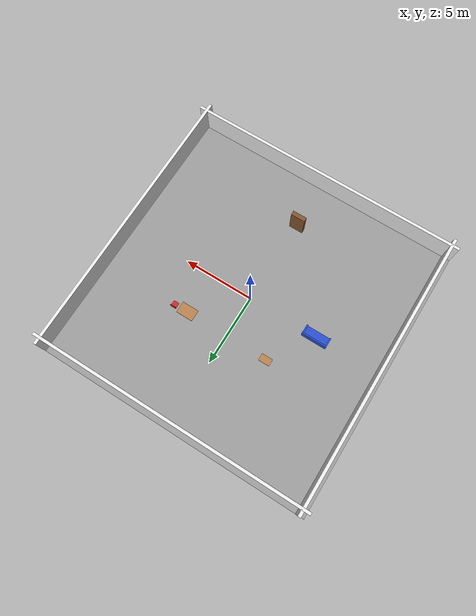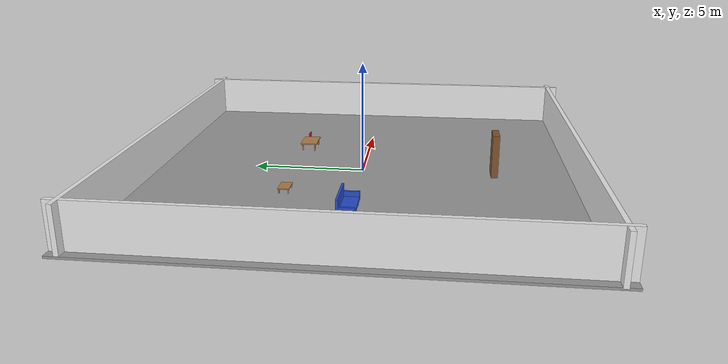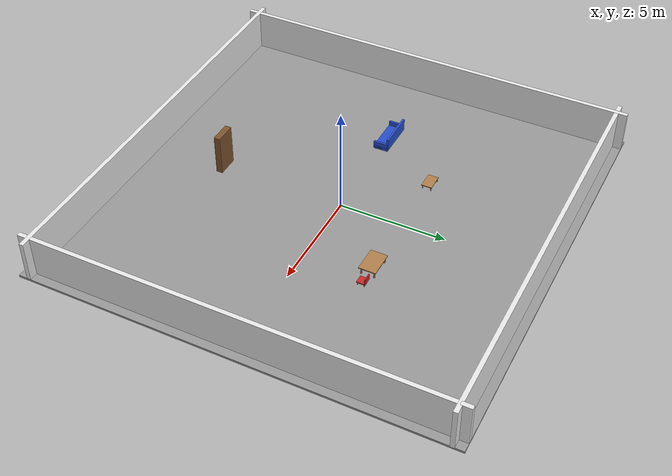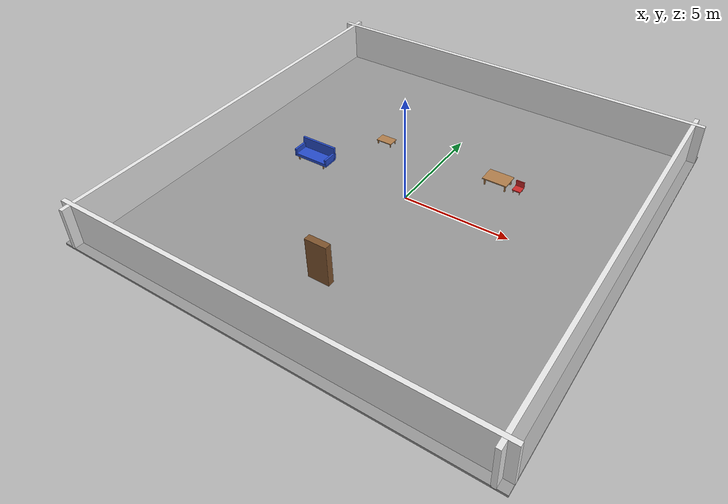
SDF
<?xml version="1.0" ?>
<sdf version="1.6">
  <world name="large_apartment">

    <!-- 环境光照 -->
    <light type="directional" name="sun">
      <cast_shadows>true</cast_shadows>
      <pose>0 0 10 0 0 0</pose>
      <diffuse>0.8 0.8 0.8 1</diffuse>
      <specular>0.2 0.2 0.2 1</specular>
      <attenuation>
        <range>1000</range>
        <constant>0.9</constant>
        <linear>0.01</linear>
        <quadratic>0.001</quadratic>
      </attenuation>
      <direction>-0.5 0.5 -1</direction>
    </light>

    <!-- 全局光照设置 -->
    <scene>
      <ambient>0.4 0.4 0.4 1</ambient>
      <background>0.7 0.7 0.7 1</background>
      <shadows>true</shadows>
    </scene>

    <!-- 物理引擎 -->
    <physics type="ode">
      <max_step_size>0.001</max_step_size>
      <real_time_factor>1</real_time_factor>
      <real_time_update_rate>1000</real_time_update_rate>
      <gravity>0 0 -9.8</gravity>
    </physics>

    <!-- ========== 自定义模型 ========== -->

    <!-- 地面 -->
    <model name="floor">
      <static>true</static>
      <link name="floor_link">
        <collision name="floor_collision">
          <geometry>
            <box>
              <size>20 20 0.1</size>
            </box>
          </geometry>
          <surface>
            <friction>
              <ode>
                <mu>1</mu>
                <mu2>0.8</mu2>
                <slip1>0.01</slip1>
                <slip2>0.01</slip2>
              </ode>
            </friction>
          </surface>
        </collision>
        <visual name="floor_visual">
          <geometry>
            <box>
              <size>20 20 0.1</size>
            </box>
          </geometry>
          <material>
            <script>
              <uri>file://media/materials/scripts/gazebo.material</uri>
              <name>Gazebo/Grey</name>
            </script>
          </material>
        </visual>
      </link>
    </model>

    <!-- 墙壁 -->
    <model name="wall_north">
      <static>true</static>
      <pose>0 9.5 1 0 0 0</pose>
      <link name="wall_link">
        <collision name="wall_collision">
          <geometry>
            <box>
              <size>20 0.2 2</size>
            </box>
          </geometry>
        </collision>
        <visual name="wall_visual">
          <geometry>
            <box>
              <size>20 0.2 2</size>
            </box>
          </geometry>
          <material>
            <script>
              <uri>file://media/materials/scripts/gazebo.material</uri>
              <name>Gazebo/White</name>
            </script>
          </material>
        </visual>
      </link>
    </model>

    <model name="wall_south">
      <static>true</static>
      <pose>0 -9.5 1 0 0 0</pose>
      <link name="wall_link">
        <collision name="wall_collision">
          <geometry>
            <box>
              <size>20 0.2 2</size>
            </box>
          </geometry>
        </collision>
        <visual name="wall_visual">
          <geometry>
            <box>
              <size>20 0.2 2</size>
            </box>
          </geometry>
          <material>
            <script>
              <uri>file://media/materials/scripts/gazebo.material</uri>
              <name>Gazebo/White</name>
            </script>
          </material>
        </visual>
      </link>
    </model>

    <model name="wall_east">
      <static>true</static>
      <pose>9.5 0 1 0 0 0</pose>
      <link name="wall_link">
        <collision name="wall_collision">
          <geometry>
            <box>
              <size>0.2 20 2</size>
            </box>
          </geometry>
        </collision>
        <visual name="wall_visual">
          <geometry>
            <box>
              <size>0.2 20 2</size>
            </box>
          </geometry>
          <material>
            <script>
              <uri>file://media/materials/scripts/gazebo.material</uri>
              <name>Gazebo/White</name>
            </script>
          </material>
        </visual>
      </link>
    </model>

    <model name="wall_west">
      <static>true</static>
      <pose>-9.5 0 1 0 0 0</pose>
      <link name="wall_link">
        <collision name="wall_collision">
          <geometry>
            <box>
              <size>0.2 20 2</size>
            </box>
          </geometry>
        </collision>
        <visual name="wall_visual">
          <geometry>
            <box>
              <size>0.2 20 2</size>
            </box>
          </geometry>
          <material>
            <script>
              <uri>file://media/materials/scripts/gazebo.material</uri>
              <name>Gazebo/White</name>
            </script>
          </material>
        </visual>
      </link>
    </model>

    <!-- 精致餐桌 -->
    <model name="dining_table">
      <static>true</static>
      <pose>3 3 0 0 0 0</pose>
      <link name="table_link">
        <!-- 桌面 -->
        <collision name="tabletop_collision">
          <pose>0 0 0.4 0 0 0</pose>
          <geometry>
            <box>
              <size>1.2 0.8 0.05</size>
            </box>
          </geometry>
        </collision>
        <visual name="tabletop_visual">
          <pose>0 0 0.4 0 0 0</pose>
          <geometry>
            <box>
              <size>1.2 0.8 0.05</size>
            </box>
          </geometry>
          <material>
            <script>
              <uri>file://media/materials/scripts/gazebo.material</uri>
              <name>Gazebo/Wood</name>
            </script>
          </material>
        </visual>
        <!-- 桌腿 -->
        <collision name="leg1_collision">
          <pose>0.5 0.3 0.15 0 0 0</pose>
          <geometry>
            <box>
              <size>0.06 0.06 0.3</size>
            </box>
          </geometry>
        </collision>
        <visual name="leg1_visual">
          <pose>0.5 0.3 0.15 0 0 0</pose>
          <geometry>
            <box>
              <size>0.06 0.06 0.3</size>
            </box>
          </geometry>
          <material>
            <script>
              <uri>file://media/materials/scripts/gazebo.material</uri>
              <name>Gazebo/DarkWood</name>
            </script>
          </material>
        </visual>
        <collision name="leg2_collision">
          <pose>-0.5 0.3 0.15 0 0 0</pose>
          <geometry>
            <box>
              <size>0.06 0.06 0.3</size>
            </box>
          </geometry>
        </collision>
        <visual name="leg2_visual">
          <pose>-0.5 0.3 0.15 0 0 0</pose>
          <geometry>
            <box>
              <size>0.06 0.06 0.3</size>
            </box>
          </geometry>
          <material>
            <script>
              <uri>file://media/materials/scripts/gazebo.material</uri>
              <name>Gazebo/DarkWood</name>
            </script>
          </material>
        </visual>
        <collision name="leg3_collision">
          <pose>0.5 -0.3 0.15 0 0 0</pose>
          <geometry>
            <box>
              <size>0.06 0.06 0.3</size>
            </box>
          </geometry>
        </collision>
        <visual name="leg3_visual">
          <pose>0.5 -0.3 0.15 0 0 0</pose>
          <geometry>
            <box>
              <size>0.06 0.06 0.3</size>
            </box>
          </geometry>
          <material>
            <script>
              <uri>file://media/materials/scripts/gazebo.material</uri>
              <name>Gazebo/DarkWood</name>
            </script>
          </material>
        </visual>
        <collision name="leg4_collision">
          <pose>-0.5 -0.3 0.15 0 0 0</pose>
          <geometry>
            <box>
              <size>0.06 0.06 0.3</size>
            </box>
          </geometry>
        </collision>
        <visual name="leg4_visual">
          <pose>-0.5 -0.3 0.15 0 0 0</pose>
          <geometry>
            <box>
              <size>0.06 0.06 0.3</size>
            </box>
          </geometry>
          <material>
            <script>
              <uri>file://media/materials/scripts/gazebo.material</uri>
              <name>Gazebo/DarkWood</name>
            </script>
          </material>
        </visual>
      </link>
    </model>

    <!-- 精致餐椅 -->
    <model name="dining_chair">
      <static>true</static>
      <pose>4 3 0 0 0 0</pose>
      <link name="chair_link">
        <!-- 座位 -->
        <collision name="seat_collision">
          <pose>0 0 0.2 0 0 0</pose>
          <geometry>
            <box>
              <size>0.4 0.4 0.05</size>
            </box>
          </geometry>
        </collision>
        <visual name="seat_visual">
          <pose>0 0 0.2 0 0 0</pose>
          <geometry>
            <box>
              <size>0.4 0.4 0.05</size>
            </box>
          </geometry>
          <material>
            <script>
              <uri>file://media/materials/scripts/gazebo.material</uri>
              <name>Gazebo/Red</name>
            </script>
          </material>
        </visual>
        <!-- 椅背 -->
        <collision name="back_collision">
          <pose>0 0.2 0.35 0 0 0</pose>
          <geometry>
            <box>
              <size>0.4 0.05 0.3</size>
            </box>
          </geometry>
        </collision>
        <visual name="back_visual">
          <pose>0 0.2 0.35 0 0 0</pose>
          <geometry>
            <box>
              <size>0.4 0.05 0.3</size>
            </box>
          </geometry>
          <material>
            <script>
              <uri>file://media/materials/scripts/gazebo.material</uri>
              <name>Gazebo/Red</name>
            </script>
          </material>
        </visual>
        <!-- 椅腿 -->
        <collision name="leg1_collision">
          <pose>0.15 0.15 0 0 0 0</pose>
          <geometry>
            <box>
              <size>0.03 0.03 0.4</size>
            </box>
          </geometry>
        </collision>
        <visual name="leg1_visual">
          <pose>0.15 0.15 0 0 0 0</pose>
          <geometry>
            <box>
              <size>0.03 0.03 0.4</size>
            </box>
          </geometry>
          <material>
            <script>
              <uri>file://media/materials/scripts/gazebo.material</uri>
              <name>Gazebo/DarkWood</name>
            </script>
          </material>
        </visual>
        <collision name="leg2_collision">
          <pose>-0.15 0.15 0 0 0 0</pose>
          <geometry>
            <box>
              <size>0.03 0.03 0.4</size>
            </box>
          </geometry>
        </collision>
        <visual name="leg2_visual">
          <pose>-0.15 0.15 0 0 0 0</pose>
          <geometry>
            <box>
              <size>0.03 0.03 0.4</size>
            </box>
          </geometry>
          <material>
            <script>
              <uri>file://media/materials/scripts/gazebo.material</uri>
              <name>Gazebo/DarkWood</name>
            </script>
          </material>
        </visual>
        <collision name="leg3_collision">
          <pose>0.15 -0.15 0 0 0 0</pose>
          <geometry>
            <box>
              <size>0.03 0.03 0.4</size>
            </box>
          </geometry>
        </collision>
        <visual name="leg3_visual">
          <pose>0.15 -0.15 0 0 0 0</pose>
          <geometry>
            <box>
              <size>0.03 0.03 0.4</size>
            </box>
          </geometry>
          <material>
            <script>
              <uri>file://media/materials/scripts/gazebo.material</uri>
              <name>Gazebo/DarkWood</name>
            </script>
          </material>
        </visual>
        <collision name="leg4_collision">
          <pose>-0.15 -0.15 0 0 0 0</pose>
          <geometry>
            <box>
              <size>0.03 0.03 0.4</size>
            </box>
          </geometry>
        </collision>
        <visual name="leg4_visual">
          <pose>-0.15 -0.15 0 0 0 0</pose>
          <geometry>
            <box>
              <size>0.03 0.03 0.4</size>
            </box>
          </geometry>
          <material>
            <script>
              <uri>file://media/materials/scripts/gazebo.material</uri>
              <name>Gazebo/DarkWood</name>
            </script>
          </material>
        </visual>
      </link>
    </model>

    <!-- 精致沙发 -->
    <model name="sofa">
      <static>true</static>
      <pose>-5 0 0 0 0 0</pose>
      <link name="sofa_link">
        <!-- 座位 -->
        <collision name="seat_collision">
          <pose>0 0 0.3 0 0 0</pose>
          <geometry>
            <box>
              <size>1.8 0.7 0.15</size>
            </box>
          </geometry>
        </collision>
        <visual name="seat_visual">
          <pose>0 0 0.3 0 0 0</pose>
          <geometry>
            <box>
              <size>1.8 0.7 0.15</size>
            </box>
          </geometry>
          <material>
            <script>
              <uri>file://media/materials/scripts/gazebo.material</uri>
              <name>Gazebo/Blue</name>
            </script>
          </material>
        </visual>
        <!-- 靠背 -->
        <collision name="back_collision">
          <pose>0 0.35 0.6 0 0 0</pose>
          <geometry>
            <box>
              <size>1.8 0.1 0.6</size>
            </box>
          </geometry>
        </collision>
        <visual name="back_visual">
          <pose>0 0.35 0.6 0 0 0</pose>
          <geometry>
            <box>
              <size>1.8 0.1 0.6</size>
            </box>
          </geometry>
          <material>
            <script>
              <uri>file://media/materials/scripts/gazebo.material</uri>
              <name>Gazebo/DarkBlue</name>
            </script>
          </material>
        </visual>
        <!-- 扶手 -->
        <collision name="arm1_collision">
          <pose>-0.85 0 0.45 0 0 0</pose>
          <geometry>
            <box>
              <size>0.1 0.7 0.3</size>
            </box>
          </geometry>
        </collision>
        <visual name="arm1_visual">
          <pose>-0.85 0 0.45 0 0 0</pose>
          <geometry>
            <box>
              <size>0.1 0.7 0.3</size>
            </box>
          </geometry>
          <material>
            <script>
              <uri>file://media/materials/scripts/gazebo.material</uri>
              <name>Gazebo/DarkBlue</name>
            </script>
          </material>
        </visual>
        <collision name="arm2_collision">
          <pose>0.85 0 0.45 0 0 0</pose>
          <geometry>
            <box>
              <size>0.1 0.7 0.3</size>
            </box>
          </geometry>
        </collision>
        <visual name="arm2_visual">
          <pose>0.85 0 0.45 0 0 0</pose>
          <geometry>
            <box>
              <size>0.1 0.7 0.3</size>
            </box>
          </geometry>
          <material>
            <script>
              <uri>file://media/materials/scripts/gazebo.material</uri>
              <name>Gazebo/DarkBlue</name>
            </script>
          </material>
        </visual>
        <!-- 沙发腿 -->
        <collision name="leg1_collision">
          <pose>-0.7 -0.3 0.1 0 0 0</pose>
          <geometry>
            <box>
              <size>0.05 0.05 0.2</size>
            </box>
          </geometry>
        </collision>
        <visual name="leg1_visual">
          <pose>-0.7 -0.3 0.1 0 0 0</pose>
          <geometry>
            <box>
              <size>0.05 0.05 0.2</size>
            </box>
          </geometry>
          <material>
            <script>
              <uri>file://media/materials/scripts/gazebo.material</uri>
              <name>Gazebo/DarkWood</name>
            </script>
          </material>
        </visual>
        <collision name="leg2_collision">
          <pose>0.7 -0.3 0.1 0 0 0</pose>
          <geometry>
            <box>
              <size>0.05 0.05 0.2</size>
            </box>
          </geometry>
        </collision>
        <visual name="leg2_visual">
          <pose>0.7 -0.3 0.1 0 0 0</pose>
          <geometry>
            <box>
              <size>0.05 0.05 0.2</size>
            </box>
          </geometry>
          <material>
            <script>
              <uri>file://media/materials/scripts/gazebo.material</uri>
              <name>Gazebo/DarkWood</name>
            </script>
          </material>
        </visual>
      </link>
    </model>

    <!-- 精致书柜 -->
    <model name="bookshelf">
      <static>true</static>
      <pose>0 -6 0 0 0 0</pose>
      <link name="bookshelf_link">
        <!-- 主体 -->
        <collision name="main_collision">
          <pose>0 0 1 0 0 0</pose>
          <geometry>
            <box>
              <size>1.0 0.3 2</size>
            </box>
          </geometry>
        </collision>
        <visual name="main_visual">
          <pose>0 0 1 0 0 0</pose>
          <geometry>
            <box>
              <size>1.0 0.3 2</size>
            </box>
          </geometry>
          <material>
            <script>
              <uri>file://media/materials/scripts/gazebo.material</uri>
              <name>Gazebo/Brown</name>
            </script>
          </material>
        </visual>
        <!-- 隔板 -->
        <collision name="shelf1_collision">
          <pose>0 0 0.5 0 0 0</pose>
          <geometry>
            <box>
              <size>0.9 0.25 0.02</size>
            </box>
          </geometry>
        </collision>
        <visual name="shelf1_visual">
          <pose>0 0 0.5 0 0 0</pose>
          <geometry>
            <box>
              <size>0.9 0.25 0.02</size>
            </box>
          </geometry>
          <material>
            <script>
              <uri>file://media/materials/scripts/gazebo.material</uri>
              <name>Gazebo/DarkWood</name>
            </script>
          </material>
        </visual>
        <collision name="shelf2_collision">
          <pose>0 0 1.0 0 0 0</pose>
          <geometry>
            <box>
              <size>0.9 0.25 0.02</size>
            </box>
          </geometry>
        </collision>
        <visual name="shelf2_visual">
          <pose>0 0 1.0 0 0 0</pose>
          <geometry>
            <box>
              <size>0.9 0.25 0.02</size>
            </box>
          </geometry>
          <material>
            <script>
              <uri>file://media/materials/scripts/gazebo.material</uri>
              <name>Gazebo/DarkWood</name>
            </script>
          </material>
        </visual>
        <collision name="shelf3_collision">
          <pose>0 0 1.5 0 0 0</pose>
          <geometry>
            <box>
              <size>0.9 0.25 0.02</size>
            </box>
          </geometry>
        </collision>
        <visual name="shelf3_visual">
          <pose>0 0 1.5 0 0 0</pose>
          <geometry>
            <box>
              <size>0.9 0.25 0.02</size>
            </box>
          </geometry>
          <material>
            <script>
              <uri>file://media/materials/scripts/gazebo.material</uri>
              <name>Gazebo/DarkWood</name>
            </script>
          </material>
        </visual>
      </link>
    </model>

    <!-- 茶几 -->
    <model name="coffee_table">
      <static>true</static>
      <pose>-3 3 0 0 0 0</pose>
      <link name="table_link">
        <!-- 桌面 -->
        <collision name="tabletop_collision">
          <pose>0 0 0.25 0 0 0</pose>
          <geometry>
            <box>
              <size>0.8 0.5 0.04</size>
            </box>
          </geometry>
        </collision>
        <visual name="tabletop_visual">
          <pose>0 0 0.25 0 0 0</pose>
          <geometry>
            <box>
              <size>0.8 0.5 0.04</size>
            </box>
          </geometry>
          <material>
            <script>
              <uri>file://media/materials/scripts/gazebo.material</uri>
              <name>Gazebo/Wood</name>
            </script>
          </material>
        </visual>
        <!-- 桌腿 -->
        <collision name="leg1_collision">
          <pose>0.35 0.2 0.1 0 0 0</pose>
          <geometry>
            <box>
              <size>0.04 0.04 0.2</size>
            </box>
          </geometry>
        </collision>
        <visual name="leg1_visual">
          <pose>0.35 0.2 0.1 0 0 0</pose>
          <geometry>
            <box>
              <size>0.04 0.04 0.2</size>
            </box>
          </geometry>
          <material>
            <script>
              <uri>file://media/materials/scripts/gazebo.material</uri>
              <name>Gazebo/DarkWood</name>
            </script>
          </material>
        </visual>
        <collision name="leg2_collision">
          <pose>-0.35 0.2 0.1 0 0 0</pose>
          <geometry>
            <box>
              <size>0.04 0.04 0.2</size>
            </box>
          </geometry>
        </collision>
        <visual name="leg2_visual">
          <pose>-0.35 0.2 0.1 0 0 0</pose>
          <geometry>
            <box>
              <size>0.04 0.04 0.2</size>
            </box>
          </geometry>
          <material>
            <script>
              <uri>file://media/materials/scripts/gazebo.material</uri>
              <name>Gazebo/DarkWood</name>
            </script>
          </material>
        </visual>
        <collision name="leg3_collision">
          <pose>0.35 -0.2 0.1 0 0 0</pose>
          <geometry>
            <box>
              <size>0.04 0.04 0.2</size>
            </box>
          </geometry>
        </collision>
        <visual name="leg3_visual">
          <pose>0.35 -0.2 0.1 0 0 0</pose>
          <geometry>
            <box>
              <size>0.04 0.04 0.2</size>
            </box>
          </geometry>
          <material>
            <script>
              <uri>file://media/materials/scripts/gazebo.material</uri>
              <name>Gazebo/DarkWood</name>
            </script>
          </material>
        </visual>
        <collision name="leg4_collision">
          <pose>-0.35 -0.2 0.1 0 0 0</pose>
          <geometry>
            <box>
              <size>0.04 0.04 0.2</size>
            </box>
          </geometry>
        </collision>
        <visual name="leg4_visual">
          <pose>-0.35 -0.2 0.1 0 0 0</pose>
          <geometry>
            <box>
              <size>0.04 0.04 0.2</size>
            </box>
          </geometry>
          <material>
            <script>
              <uri>file://media/materials/scripts/gazebo.material</uri>
              <name>Gazebo/DarkWood</name>
            </script>
          </material>
        </visual>
      </link>
    </model>

    <plugin name="gazebo_ros" filename="libgazebo_ros_init.so"/>
    <plugin name="gazebo_ros" filename="libgazebo_ros_factory.so"/>

  </world>
</sdf>
